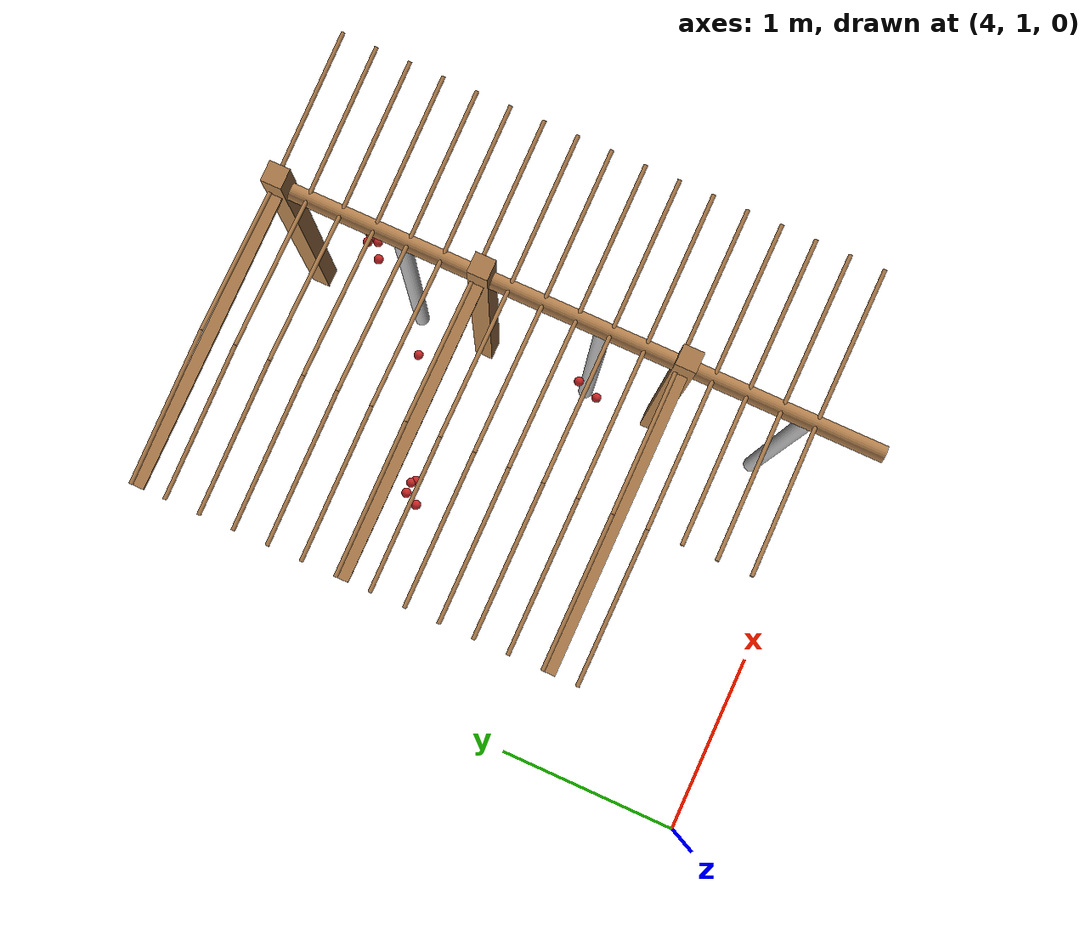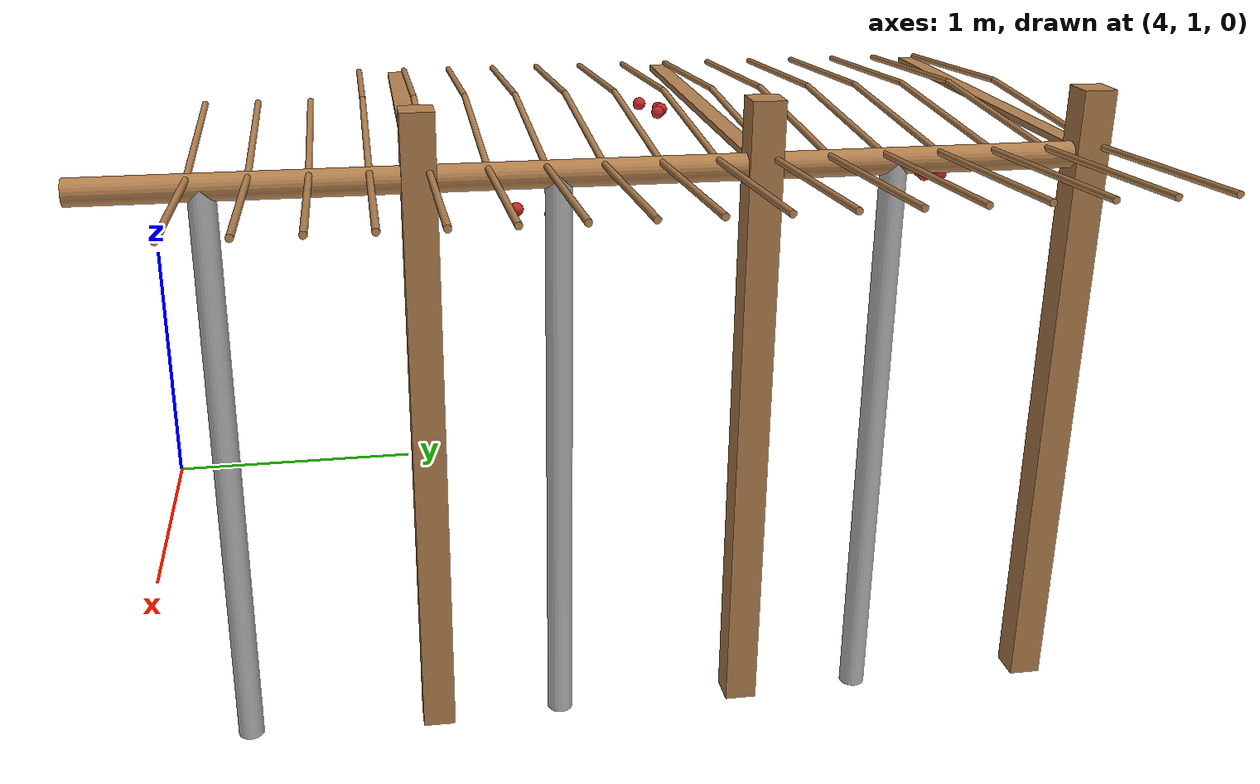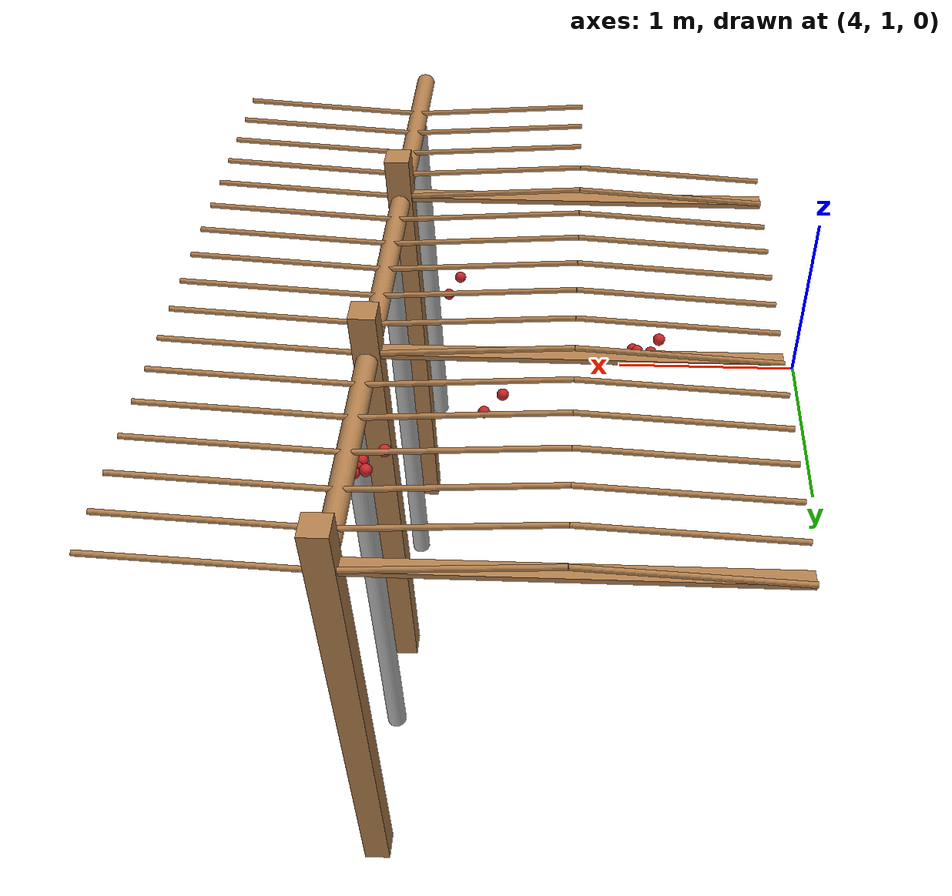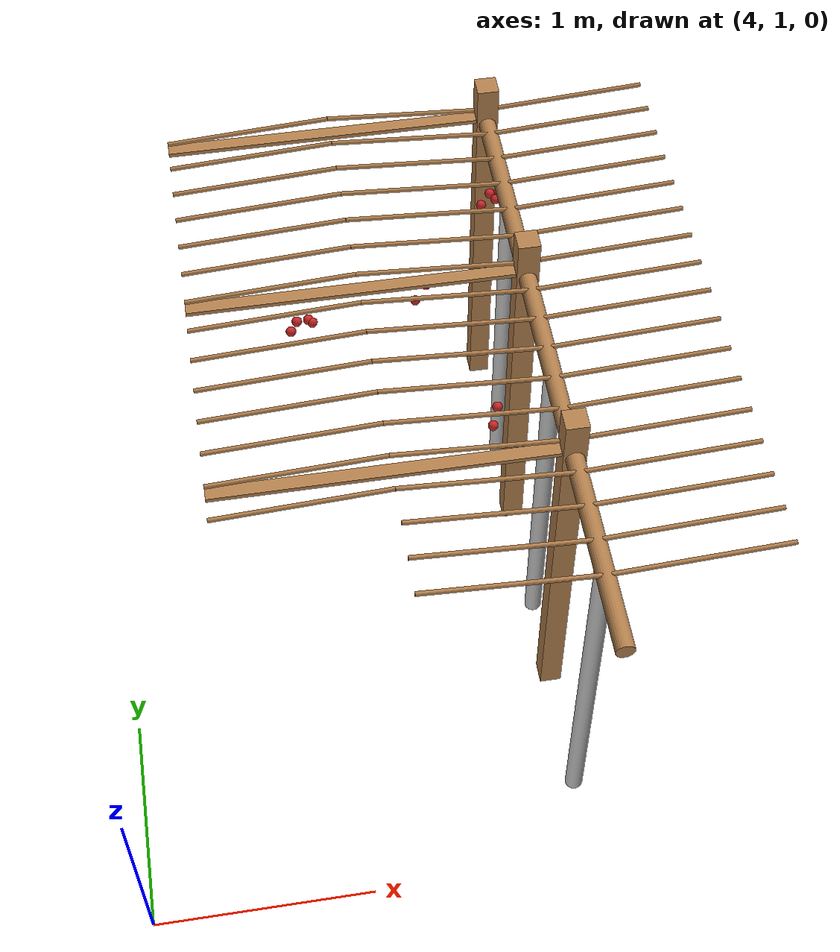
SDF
<sdf version="1.4">
 <model name="pergola">
  <include><name>post_46</name><pose>6.0 2.0 0 0 0 0</pose><uri>model://post</uri></include>
  <include><name>post_47</name><pose>6.0 3.0 0 0 0 0</pose><uri>model://post</uri></include>
  <include><name>post_48</name><pose>6.0 4.0 0 0 0 0</pose><uri>model://post</uri></include>
  <link name="beam_35">
   <pose>5.25 2.0 1.81 0 0 0</pose>
   <collision name="collision"><geometry><box><size>1.5 0.06 0.02</size></box></geometry></collision>
   <visual name="visual">
    <geometry><box><size>1.5 0.06 0.02</size></box></geometry>
    <material><script><name>Gazebo/Wood</name></script></material>
   </visual>
   <inertial>
    <mass>5</mass>
    <inertia>
     <ixx>0.0016666666666666668</ixx>
     <ixy>0.0</ixy>
     <ixz>0.0</ixz>
     <iyy>0.9390000000000001</iyy>
     <iyz>0.0</iyz>
     <izz>0.9376666666666665</izz>
    </inertia>
   </inertial>
  </link>
  <link name="beam_36">
   <pose>5.25 3.0 1.81 0 0 0</pose>
   <collision name="collision"><geometry><box><size>1.5 0.06 0.02</size></box></geometry></collision>
   <visual name="visual">
    <geometry><box><size>1.5 0.06 0.02</size></box></geometry>
    <material><script><name>Gazebo/Wood</name></script></material>
   </visual>
   <inertial>
    <mass>5</mass>
    <inertia>
     <ixx>0.0016666666666666668</ixx>
     <ixy>0.0</ixy>
     <ixz>0.0</ixz>
     <iyy>0.9390000000000001</iyy>
     <iyz>0.0</iyz>
     <izz>0.9376666666666665</izz>
    </inertia>
   </inertial>
  </link>
  <link name="beam_37">
   <pose>5.25 4.0 1.81 0 0 0</pose>
   <collision name="collision"><geometry><box><size>1.5 0.06 0.02</size></box></geometry></collision>
   <visual name="visual">
    <geometry><box><size>1.5 0.06 0.02</size></box></geometry>
    <material><script><name>Gazebo/Wood</name></script></material>
   </visual>
   <inertial>
    <mass>5</mass>
    <inertia>
     <ixx>0.0016666666666666668</ixx>
     <ixy>0.0</ixy>
     <ixz>0.0</ixz>
     <iyy>0.9390000000000001</iyy>
     <iyz>0.0</iyz>
     <izz>0.9376666666666665</izz>
    </inertia>
   </inertial>
  </link>
  <include><name>tree_41</name><pose>6.0 1.4 0 0 0 0</pose><uri>model://tree_trunk</uri></include>
  <include><name>tree_42</name><pose>6.0 2.4 0 0 0 0</pose><uri>model://tree_trunk</uri></include>
  <include><name>tree_43</name><pose>6.0 3.4 0 0 0 0</pose><uri>model://tree_trunk</uri></include>
  <link name="baseBranch_41">
   <pose>6.0 1.5 1.8 1.5707963267948966 0 0</pose>
   <collision name="collision">
    <geometry><cylinder><radius>0.04</radius><length>0.94</length></cylinder></geometry>
   </collision>
   <visual name="visual">
    <geometry><cylinder><radius>0.04</radius><length>0.94</length></cylinder></geometry>
    <material><script><name>Gazebo/WoodFloor</name></script></material>
   </visual>
   <inertial>
    <mass>10</mass>
    <inertia>
     <ixx>0.7403333333333334</ixx>
     <ixy>0.0</ixy>
     <ixz>0.0</ixz>
     <iyy>0.7403333333333334</iyy>
     <iyz>0.0</iyz>
     <izz>0.008</izz>
    </inertia>
   </inertial>
  </link>
  <link name="baseBranch_42">
   <pose>6.0 2.5 1.8 1.5707963267948966 0 0</pose>
   <collision name="collision">
    <geometry><cylinder><radius>0.04</radius><length>0.94</length></cylinder></geometry>
   </collision>
   <visual name="visual">
    <geometry><cylinder><radius>0.04</radius><length>0.94</length></cylinder></geometry>
    <material><script><name>Gazebo/WoodFloor</name></script></material>
   </visual>
   <inertial>
    <mass>10</mass>
    <inertia>
     <ixx>0.7403333333333334</ixx>
     <ixy>0.0</ixy>
     <ixz>0.0</ixz>
     <iyy>0.7403333333333334</iyy>
     <iyz>0.0</iyz>
     <izz>0.008</izz>
    </inertia>
   </inertial>
  </link>
  <link name="baseBranch_43">
   <pose>6.0 3.5 1.8 1.5707963267948966 0 0</pose>
   <collision name="collision">
    <geometry><cylinder><radius>0.04</radius><length>0.94</length></cylinder></geometry>
   </collision>
   <visual name="visual">
    <geometry><cylinder><radius>0.04</radius><length>0.94</length></cylinder></geometry>
    <material><script><name>Gazebo/WoodFloor</name></script></material>
   </visual>
   <inertial>
    <mass>10</mass>
    <inertia>
     <ixx>0.7403333333333334</ixx>
     <ixy>0.0</ixy>
     <ixz>0.0</ixz>
     <iyy>0.7403333333333334</iyy>
     <iyz>0.0</iyz>
     <izz>0.008</izz>
    </inertia>
   </inertial>
  </link>
  <link name="vine_377">
   <pose>5.625 1.3633333333333333 1.85 0 -1.5042281630190728 0</pose>
   <collision name="collision">
    <geometry><cylinder><radius>0.01</radius><length>0.7516648189186453</length></cylinder></geometry>
   </collision>
   <visual name="visual">
    <geometry><cylinder><radius>0.01</radius><length>0.7516648189186453</length></cylinder></geometry>
    <material><script><name>Gazebo/WoodFloor</name></script></material>
   </visual>
   <inertial>
    <mass>5</mass>
    <inertia>
     <ixx>0.23554166666666657</ixx>
     <ixy>0.0</ixy>
     <ixz>0.0</ixz>
     <iyy>0.23554166666666657</iyy>
     <iyz>0.0</iyz>
     <izz>0.00025</izz>
    </inertia>
   </inertial>
  </link>
  <link name="vine_379">
   <pose>5.625 1.53 1.85 0 -1.5042281630190728 0</pose>
   <collision name="collision">
    <geometry><cylinder><radius>0.01</radius><length>0.7516648189186453</length></cylinder></geometry>
   </collision>
   <visual name="visual">
    <geometry><cylinder><radius>0.01</radius><length>0.7516648189186453</length></cylinder></geometry>
    <material><script><name>Gazebo/WoodFloor</name></script></material>
   </visual>
   <inertial>
    <mass>5</mass>
    <inertia>
     <ixx>0.23554166666666657</ixx>
     <ixy>0.0</ixy>
     <ixz>0.0</ixz>
     <iyy>0.23554166666666657</iyy>
     <iyz>0.0</iyz>
     <izz>0.00025</izz>
    </inertia>
   </inertial>
  </link>
  <link name="vine_381">
   <pose>5.625 1.6966666666666665 1.85 0 -1.5042281630190728 0</pose>
   <collision name="collision">
    <geometry><cylinder><radius>0.01</radius><length>0.7516648189186453</length></cylinder></geometry>
   </collision>
   <visual name="visual">
    <geometry><cylinder><radius>0.01</radius><length>0.7516648189186453</length></cylinder></geometry>
    <material><script><name>Gazebo/WoodFloor</name></script></material>
   </visual>
   <inertial>
    <mass>5</mass>
    <inertia>
     <ixx>0.23554166666666657</ixx>
     <ixy>0.0</ixy>
     <ixz>0.0</ixz>
     <iyy>0.23554166666666657</iyy>
     <iyz>0.0</iyz>
     <izz>0.00025</izz>
    </inertia>
   </inertial>
  </link>
  <link name="vine_382">
   <pose>4.875 1.8633333333333333 1.85 0 1.5042281630190728 0</pose>
   <collision name="collision">
    <geometry><cylinder><radius>0.01</radius><length>0.7516648189186453</length></cylinder></geometry>
   </collision>
   <visual name="visual">
    <geometry><cylinder><radius>0.01</radius><length>0.7516648189186453</length></cylinder></geometry>
    <material><script><name>Gazebo/WoodFloor</name></script></material>
   </visual>
   <inertial>
    <mass>5</mass>
    <inertia>
     <ixx>0.23554166666666657</ixx>
     <ixy>0.0</ixy>
     <ixz>0.0</ixz>
     <iyy>0.23554166666666657</iyy>
     <iyz>0.0</iyz>
     <izz>0.00025</izz>
    </inertia>
   </inertial>
  </link>
  <link name="vine_383">
   <pose>5.625 1.8633333333333333 1.85 0 -1.5042281630190728 0</pose>
   <collision name="collision">
    <geometry><cylinder><radius>0.01</radius><length>0.7516648189186453</length></cylinder></geometry>
   </collision>
   <visual name="visual">
    <geometry><cylinder><radius>0.01</radius><length>0.7516648189186453</length></cylinder></geometry>
    <material><script><name>Gazebo/WoodFloor</name></script></material>
   </visual>
   <inertial>
    <mass>5</mass>
    <inertia>
     <ixx>0.23554166666666657</ixx>
     <ixy>0.0</ixy>
     <ixz>0.0</ixz>
     <iyy>0.23554166666666657</iyy>
     <iyz>0.0</iyz>
     <izz>0.00025</izz>
    </inertia>
   </inertial>
  </link>
  <link name="vine_384">
   <pose>4.875 2.03 1.85 0 1.5042281630190728 0</pose>
   <collision name="collision">
    <geometry><cylinder><radius>0.01</radius><length>0.7516648189186453</length></cylinder></geometry>
   </collision>
   <visual name="visual">
    <geometry><cylinder><radius>0.01</radius><length>0.7516648189186453</length></cylinder></geometry>
    <material><script><name>Gazebo/WoodFloor</name></script></material>
   </visual>
   <inertial>
    <mass>5</mass>
    <inertia>
     <ixx>0.23554166666666657</ixx>
     <ixy>0.0</ixy>
     <ixz>0.0</ixz>
     <iyy>0.23554166666666657</iyy>
     <iyz>0.0</iyz>
     <izz>0.00025</izz>
    </inertia>
   </inertial>
  </link>
  <link name="vine_385">
   <pose>5.625 2.03 1.85 0 -1.5042281630190728 0</pose>
   <collision name="collision">
    <geometry><cylinder><radius>0.01</radius><length>0.7516648189186453</length></cylinder></geometry>
   </collision>
   <visual name="visual">
    <geometry><cylinder><radius>0.01</radius><length>0.7516648189186453</length></cylinder></geometry>
    <material><script><name>Gazebo/WoodFloor</name></script></material>
   </visual>
   <inertial>
    <mass>5</mass>
    <inertia>
     <ixx>0.23554166666666657</ixx>
     <ixy>0.0</ixy>
     <ixz>0.0</ixz>
     <iyy>0.23554166666666657</iyy>
     <iyz>0.0</iyz>
     <izz>0.00025</izz>
    </inertia>
   </inertial>
  </link>
  <link name="vine_386">
   <pose>4.875 2.1966666666666663 1.85 0 1.5042281630190728 0</pose>
   <collision name="collision">
    <geometry><cylinder><radius>0.01</radius><length>0.7516648189186453</length></cylinder></geometry>
   </collision>
   <visual name="visual">
    <geometry><cylinder><radius>0.01</radius><length>0.7516648189186453</length></cylinder></geometry>
    <material><script><name>Gazebo/WoodFloor</name></script></material>
   </visual>
   <inertial>
    <mass>5</mass>
    <inertia>
     <ixx>0.23554166666666657</ixx>
     <ixy>0.0</ixy>
     <ixz>0.0</ixz>
     <iyy>0.23554166666666657</iyy>
     <iyz>0.0</iyz>
     <izz>0.00025</izz>
    </inertia>
   </inertial>
  </link>
  <link name="vine_387">
   <pose>5.625 2.1966666666666663 1.85 0 -1.5042281630190728 0</pose>
   <collision name="collision">
    <geometry><cylinder><radius>0.01</radius><length>0.7516648189186453</length></cylinder></geometry>
   </collision>
   <visual name="visual">
    <geometry><cylinder><radius>0.01</radius><length>0.7516648189186453</length></cylinder></geometry>
    <material><script><name>Gazebo/WoodFloor</name></script></material>
   </visual>
   <inertial>
    <mass>5</mass>
    <inertia>
     <ixx>0.23554166666666657</ixx>
     <ixy>0.0</ixy>
     <ixz>0.0</ixz>
     <iyy>0.23554166666666657</iyy>
     <iyz>0.0</iyz>
     <izz>0.00025</izz>
    </inertia>
   </inertial>
  </link>
  <link name="vine_388">
   <pose>4.875 2.363333333333333 1.85 0 1.5042281630190728 0</pose>
   <collision name="collision">
    <geometry><cylinder><radius>0.01</radius><length>0.7516648189186453</length></cylinder></geometry>
   </collision>
   <visual name="visual">
    <geometry><cylinder><radius>0.01</radius><length>0.7516648189186453</length></cylinder></geometry>
    <material><script><name>Gazebo/WoodFloor</name></script></material>
   </visual>
   <inertial>
    <mass>5</mass>
    <inertia>
     <ixx>0.23554166666666657</ixx>
     <ixy>0.0</ixy>
     <ixz>0.0</ixz>
     <iyy>0.23554166666666657</iyy>
     <iyz>0.0</iyz>
     <izz>0.00025</izz>
    </inertia>
   </inertial>
  </link>
  <link name="vine_389">
   <pose>5.625 2.363333333333333 1.85 0 -1.5042281630190728 0</pose>
   <collision name="collision">
    <geometry><cylinder><radius>0.01</radius><length>0.7516648189186453</length></cylinder></geometry>
   </collision>
   <visual name="visual">
    <geometry><cylinder><radius>0.01</radius><length>0.7516648189186453</length></cylinder></geometry>
    <material><script><name>Gazebo/WoodFloor</name></script></material>
   </visual>
   <inertial>
    <mass>5</mass>
    <inertia>
     <ixx>0.23554166666666657</ixx>
     <ixy>0.0</ixy>
     <ixz>0.0</ixz>
     <iyy>0.23554166666666657</iyy>
     <iyz>0.0</iyz>
     <izz>0.00025</izz>
    </inertia>
   </inertial>
  </link>
  <link name="vine_390">
   <pose>4.875 2.53 1.85 0 1.5042281630190728 0</pose>
   <collision name="collision">
    <geometry><cylinder><radius>0.01</radius><length>0.7516648189186453</length></cylinder></geometry>
   </collision>
   <visual name="visual">
    <geometry><cylinder><radius>0.01</radius><length>0.7516648189186453</length></cylinder></geometry>
    <material><script><name>Gazebo/WoodFloor</name></script></material>
   </visual>
   <inertial>
    <mass>5</mass>
    <inertia>
     <ixx>0.23554166666666657</ixx>
     <ixy>0.0</ixy>
     <ixz>0.0</ixz>
     <iyy>0.23554166666666657</iyy>
     <iyz>0.0</iyz>
     <izz>0.00025</izz>
    </inertia>
   </inertial>
  </link>
  <link name="vine_391">
   <pose>5.625 2.53 1.85 0 -1.5042281630190728 0</pose>
   <collision name="collision">
    <geometry><cylinder><radius>0.01</radius><length>0.7516648189186453</length></cylinder></geometry>
   </collision>
   <visual name="visual">
    <geometry><cylinder><radius>0.01</radius><length>0.7516648189186453</length></cylinder></geometry>
    <material><script><name>Gazebo/WoodFloor</name></script></material>
   </visual>
   <inertial>
    <mass>5</mass>
    <inertia>
     <ixx>0.23554166666666657</ixx>
     <ixy>0.0</ixy>
     <ixz>0.0</ixz>
     <iyy>0.23554166666666657</iyy>
     <iyz>0.0</iyz>
     <izz>0.00025</izz>
    </inertia>
   </inertial>
  </link>
  <link name="vine_392">
   <pose>4.875 2.6966666666666663 1.85 0 1.5042281630190728 0</pose>
   <collision name="collision">
    <geometry><cylinder><radius>0.01</radius><length>0.7516648189186453</length></cylinder></geometry>
   </collision>
   <visual name="visual">
    <geometry><cylinder><radius>0.01</radius><length>0.7516648189186453</length></cylinder></geometry>
    <material><script><name>Gazebo/WoodFloor</name></script></material>
   </visual>
   <inertial>
    <mass>5</mass>
    <inertia>
     <ixx>0.23554166666666657</ixx>
     <ixy>0.0</ixy>
     <ixz>0.0</ixz>
     <iyy>0.23554166666666657</iyy>
     <iyz>0.0</iyz>
     <izz>0.00025</izz>
    </inertia>
   </inertial>
  </link>
  <link name="vine_393">
   <pose>5.625 2.6966666666666663 1.85 0 -1.5042281630190728 0</pose>
   <collision name="collision">
    <geometry><cylinder><radius>0.01</radius><length>0.7516648189186453</length></cylinder></geometry>
   </collision>
   <visual name="visual">
    <geometry><cylinder><radius>0.01</radius><length>0.7516648189186453</length></cylinder></geometry>
    <material><script><name>Gazebo/WoodFloor</name></script></material>
   </visual>
   <inertial>
    <mass>5</mass>
    <inertia>
     <ixx>0.23554166666666657</ixx>
     <ixy>0.0</ixy>
     <ixz>0.0</ixz>
     <iyy>0.23554166666666657</iyy>
     <iyz>0.0</iyz>
     <izz>0.00025</izz>
    </inertia>
   </inertial>
  </link>
  <link name="vine_394">
   <pose>4.875 2.863333333333333 1.85 0 1.5042281630190728 0</pose>
   <collision name="collision">
    <geometry><cylinder><radius>0.01</radius><length>0.7516648189186453</length></cylinder></geometry>
   </collision>
   <visual name="visual">
    <geometry><cylinder><radius>0.01</radius><length>0.7516648189186453</length></cylinder></geometry>
    <material><script><name>Gazebo/WoodFloor</name></script></material>
   </visual>
   <inertial>
    <mass>5</mass>
    <inertia>
     <ixx>0.23554166666666657</ixx>
     <ixy>0.0</ixy>
     <ixz>0.0</ixz>
     <iyy>0.23554166666666657</iyy>
     <iyz>0.0</iyz>
     <izz>0.00025</izz>
    </inertia>
   </inertial>
  </link>
  <link name="vine_395">
   <pose>5.625 2.863333333333333 1.85 0 -1.5042281630190728 0</pose>
   <collision name="collision">
    <geometry><cylinder><radius>0.01</radius><length>0.7516648189186453</length></cylinder></geometry>
   </collision>
   <visual name="visual">
    <geometry><cylinder><radius>0.01</radius><length>0.7516648189186453</length></cylinder></geometry>
    <material><script><name>Gazebo/WoodFloor</name></script></material>
   </visual>
   <inertial>
    <mass>5</mass>
    <inertia>
     <ixx>0.23554166666666657</ixx>
     <ixy>0.0</ixy>
     <ixz>0.0</ixz>
     <iyy>0.23554166666666657</iyy>
     <iyz>0.0</iyz>
     <izz>0.00025</izz>
    </inertia>
   </inertial>
  </link>
  <link name="vine_396">
   <pose>4.875 3.03 1.85 0 1.5042281630190728 0</pose>
   <collision name="collision">
    <geometry><cylinder><radius>0.01</radius><length>0.7516648189186453</length></cylinder></geometry>
   </collision>
   <visual name="visual">
    <geometry><cylinder><radius>0.01</radius><length>0.7516648189186453</length></cylinder></geometry>
    <material><script><name>Gazebo/WoodFloor</name></script></material>
   </visual>
   <inertial>
    <mass>5</mass>
    <inertia>
     <ixx>0.23554166666666657</ixx>
     <ixy>0.0</ixy>
     <ixz>0.0</ixz>
     <iyy>0.23554166666666657</iyy>
     <iyz>0.0</iyz>
     <izz>0.00025</izz>
    </inertia>
   </inertial>
  </link>
  <link name="vine_397">
   <pose>5.625 3.03 1.85 0 -1.5042281630190728 0</pose>
   <collision name="collision">
    <geometry><cylinder><radius>0.01</radius><length>0.7516648189186453</length></cylinder></geometry>
   </collision>
   <visual name="visual">
    <geometry><cylinder><radius>0.01</radius><length>0.7516648189186453</length></cylinder></geometry>
    <material><script><name>Gazebo/WoodFloor</name></script></material>
   </visual>
   <inertial>
    <mass>5</mass>
    <inertia>
     <ixx>0.23554166666666657</ixx>
     <ixy>0.0</ixy>
     <ixz>0.0</ixz>
     <iyy>0.23554166666666657</iyy>
     <iyz>0.0</iyz>
     <izz>0.00025</izz>
    </inertia>
   </inertial>
  </link>
  <link name="vine_398">
   <pose>4.875 3.1966666666666663 1.85 0 1.5042281630190728 0</pose>
   <collision name="collision">
    <geometry><cylinder><radius>0.01</radius><length>0.7516648189186453</length></cylinder></geometry>
   </collision>
   <visual name="visual">
    <geometry><cylinder><radius>0.01</radius><length>0.7516648189186453</length></cylinder></geometry>
    <material><script><name>Gazebo/WoodFloor</name></script></material>
   </visual>
   <inertial>
    <mass>5</mass>
    <inertia>
     <ixx>0.23554166666666657</ixx>
     <ixy>0.0</ixy>
     <ixz>0.0</ixz>
     <iyy>0.23554166666666657</iyy>
     <iyz>0.0</iyz>
     <izz>0.00025</izz>
    </inertia>
   </inertial>
  </link>
  <link name="vine_399">
   <pose>5.625 3.1966666666666663 1.85 0 -1.5042281630190728 0</pose>
   <collision name="collision">
    <geometry><cylinder><radius>0.01</radius><length>0.7516648189186453</length></cylinder></geometry>
   </collision>
   <visual name="visual">
    <geometry><cylinder><radius>0.01</radius><length>0.7516648189186453</length></cylinder></geometry>
    <material><script><name>Gazebo/WoodFloor</name></script></material>
   </visual>
   <inertial>
    <mass>5</mass>
    <inertia>
     <ixx>0.23554166666666657</ixx>
     <ixy>0.0</ixy>
     <ixz>0.0</ixz>
     <iyy>0.23554166666666657</iyy>
     <iyz>0.0</iyz>
     <izz>0.00025</izz>
    </inertia>
   </inertial>
  </link>
  <link name="vine_400">
   <pose>4.875 3.363333333333333 1.85 0 1.5042281630190728 0</pose>
   <collision name="collision">
    <geometry><cylinder><radius>0.01</radius><length>0.7516648189186453</length></cylinder></geometry>
   </collision>
   <visual name="visual">
    <geometry><cylinder><radius>0.01</radius><length>0.7516648189186453</length></cylinder></geometry>
    <material><script><name>Gazebo/WoodFloor</name></script></material>
   </visual>
   <inertial>
    <mass>5</mass>
    <inertia>
     <ixx>0.23554166666666657</ixx>
     <ixy>0.0</ixy>
     <ixz>0.0</ixz>
     <iyy>0.23554166666666657</iyy>
     <iyz>0.0</iyz>
     <izz>0.00025</izz>
    </inertia>
   </inertial>
  </link>
  <link name="vine_401">
   <pose>5.625 3.363333333333333 1.85 0 -1.5042281630190728 0</pose>
   <collision name="collision">
    <geometry><cylinder><radius>0.01</radius><length>0.7516648189186453</length></cylinder></geometry>
   </collision>
   <visual name="visual">
    <geometry><cylinder><radius>0.01</radius><length>0.7516648189186453</length></cylinder></geometry>
    <material><script><name>Gazebo/WoodFloor</name></script></material>
   </visual>
   <inertial>
    <mass>5</mass>
    <inertia>
     <ixx>0.23554166666666657</ixx>
     <ixy>0.0</ixy>
     <ixz>0.0</ixz>
     <iyy>0.23554166666666657</iyy>
     <iyz>0.0</iyz>
     <izz>0.00025</izz>
    </inertia>
   </inertial>
  </link>
  <link name="vine_402">
   <pose>4.875 3.53 1.85 0 1.5042281630190728 0</pose>
   <collision name="collision">
    <geometry><cylinder><radius>0.01</radius><length>0.7516648189186453</length></cylinder></geometry>
   </collision>
   <visual name="visual">
    <geometry><cylinder><radius>0.01</radius><length>0.7516648189186453</length></cylinder></geometry>
    <material><script><name>Gazebo/WoodFloor</name></script></material>
   </visual>
   <inertial>
    <mass>5</mass>
    <inertia>
     <ixx>0.23554166666666657</ixx>
     <ixy>0.0</ixy>
     <ixz>0.0</ixz>
     <iyy>0.23554166666666657</iyy>
     <iyz>0.0</iyz>
     <izz>0.00025</izz>
    </inertia>
   </inertial>
  </link>
  <link name="vine_403">
   <pose>5.625 3.53 1.85 0 -1.5042281630190728 0</pose>
   <collision name="collision">
    <geometry><cylinder><radius>0.01</radius><length>0.7516648189186453</length></cylinder></geometry>
   </collision>
   <visual name="visual">
    <geometry><cylinder><radius>0.01</radius><length>0.7516648189186453</length></cylinder></geometry>
    <material><script><name>Gazebo/WoodFloor</name></script></material>
   </visual>
   <inertial>
    <mass>5</mass>
    <inertia>
     <ixx>0.23554166666666657</ixx>
     <ixy>0.0</ixy>
     <ixz>0.0</ixz>
     <iyy>0.23554166666666657</iyy>
     <iyz>0.0</iyz>
     <izz>0.00025</izz>
    </inertia>
   </inertial>
  </link>
  <link name="vine_404">
   <pose>4.875 3.6966666666666663 1.85 0 1.5042281630190728 0</pose>
   <collision name="collision">
    <geometry><cylinder><radius>0.01</radius><length>0.7516648189186453</length></cylinder></geometry>
   </collision>
   <visual name="visual">
    <geometry><cylinder><radius>0.01</radius><length>0.7516648189186453</length></cylinder></geometry>
    <material><script><name>Gazebo/WoodFloor</name></script></material>
   </visual>
   <inertial>
    <mass>5</mass>
    <inertia>
     <ixx>0.23554166666666657</ixx>
     <ixy>0.0</ixy>
     <ixz>0.0</ixz>
     <iyy>0.23554166666666657</iyy>
     <iyz>0.0</iyz>
     <izz>0.00025</izz>
    </inertia>
   </inertial>
  </link>
  <link name="vine_405">
   <pose>5.625 3.6966666666666663 1.85 0 -1.5042281630190728 0</pose>
   <collision name="collision">
    <geometry><cylinder><radius>0.01</radius><length>0.7516648189186453</length></cylinder></geometry>
   </collision>
   <visual name="visual">
    <geometry><cylinder><radius>0.01</radius><length>0.7516648189186453</length></cylinder></geometry>
    <material><script><name>Gazebo/WoodFloor</name></script></material>
   </visual>
   <inertial>
    <mass>5</mass>
    <inertia>
     <ixx>0.23554166666666657</ixx>
     <ixy>0.0</ixy>
     <ixz>0.0</ixz>
     <iyy>0.23554166666666657</iyy>
     <iyz>0.0</iyz>
     <izz>0.00025</izz>
    </inertia>
   </inertial>
  </link>
  <link name="vine_406">
   <pose>4.875 3.863333333333333 1.85 0 1.5042281630190728 0</pose>
   <collision name="collision">
    <geometry><cylinder><radius>0.01</radius><length>0.7516648189186453</length></cylinder></geometry>
   </collision>
   <visual name="visual">
    <geometry><cylinder><radius>0.01</radius><length>0.7516648189186453</length></cylinder></geometry>
    <material><script><name>Gazebo/WoodFloor</name></script></material>
   </visual>
   <inertial>
    <mass>5</mass>
    <inertia>
     <ixx>0.23554166666666657</ixx>
     <ixy>0.0</ixy>
     <ixz>0.0</ixz>
     <iyy>0.23554166666666657</iyy>
     <iyz>0.0</iyz>
     <izz>0.00025</izz>
    </inertia>
   </inertial>
  </link>
  <link name="vine_407">
   <pose>5.625 3.863333333333333 1.85 0 -1.5042281630190728 0</pose>
   <collision name="collision">
    <geometry><cylinder><radius>0.01</radius><length>0.7516648189186453</length></cylinder></geometry>
   </collision>
   <visual name="visual">
    <geometry><cylinder><radius>0.01</radius><length>0.7516648189186453</length></cylinder></geometry>
    <material><script><name>Gazebo/WoodFloor</name></script></material>
   </visual>
   <inertial>
    <mass>5</mass>
    <inertia>
     <ixx>0.23554166666666657</ixx>
     <ixy>0.0</ixy>
     <ixz>0.0</ixz>
     <iyy>0.23554166666666657</iyy>
     <iyz>0.0</iyz>
     <izz>0.00025</izz>
    </inertia>
   </inertial>
  </link>
  <link name="vine_408">
   <pose>4.875 4.03 1.85 0 1.5042281630190728 0</pose>
   <collision name="collision">
    <geometry><cylinder><radius>0.01</radius><length>0.7516648189186453</length></cylinder></geometry>
   </collision>
   <visual name="visual">
    <geometry><cylinder><radius>0.01</radius><length>0.7516648189186453</length></cylinder></geometry>
    <material><script><name>Gazebo/WoodFloor</name></script></material>
   </visual>
   <inertial>
    <mass>5</mass>
    <inertia>
     <ixx>0.23554166666666657</ixx>
     <ixy>0.0</ixy>
     <ixz>0.0</ixz>
     <iyy>0.23554166666666657</iyy>
     <iyz>0.0</iyz>
     <izz>0.00025</izz>
    </inertia>
   </inertial>
  </link>
  <link name="vine_409">
   <pose>5.625 4.03 1.85 0 -1.5042281630190728 0</pose>
   <collision name="collision">
    <geometry><cylinder><radius>0.01</radius><length>0.7516648189186453</length></cylinder></geometry>
   </collision>
   <visual name="visual">
    <geometry><cylinder><radius>0.01</radius><length>0.7516648189186453</length></cylinder></geometry>
    <material><script><name>Gazebo/WoodFloor</name></script></material>
   </visual>
   <inertial>
    <mass>5</mass>
    <inertia>
     <ixx>0.23554166666666657</ixx>
     <ixy>0.0</ixy>
     <ixz>0.0</ixz>
     <iyy>0.23554166666666657</iyy>
     <iyz>0.0</iyz>
     <izz>0.00025</izz>
    </inertia>
   </inertial>
  </link>
  <link name="vine_496">
   <pose>6.375 1.3633333333333333 1.85 0 1.5042281630190728 0</pose>
   <collision name="collision">
    <geometry><cylinder><radius>0.01</radius><length>0.7516648189186453</length></cylinder></geometry>
   </collision>
   <visual name="visual">
    <geometry><cylinder><radius>0.01</radius><length>0.7516648189186453</length></cylinder></geometry>
    <material><script><name>Gazebo/WoodFloor</name></script></material>
   </visual>
   <inertial>
    <mass>5</mass>
    <inertia>
     <ixx>0.23554166666666657</ixx>
     <ixy>0.0</ixy>
     <ixz>0.0</ixz>
     <iyy>0.23554166666666657</iyy>
     <iyz>0.0</iyz>
     <izz>0.00025</izz>
    </inertia>
   </inertial>
  </link>
  <link name="vine_498">
   <pose>6.375 1.53 1.85 0 1.5042281630190728 0</pose>
   <collision name="collision">
    <geometry><cylinder><radius>0.01</radius><length>0.7516648189186453</length></cylinder></geometry>
   </collision>
   <visual name="visual">
    <geometry><cylinder><radius>0.01</radius><length>0.7516648189186453</length></cylinder></geometry>
    <material><script><name>Gazebo/WoodFloor</name></script></material>
   </visual>
   <inertial>
    <mass>5</mass>
    <inertia>
     <ixx>0.23554166666666657</ixx>
     <ixy>0.0</ixy>
     <ixz>0.0</ixz>
     <iyy>0.23554166666666657</iyy>
     <iyz>0.0</iyz>
     <izz>0.00025</izz>
    </inertia>
   </inertial>
  </link>
  <link name="vine_500">
   <pose>6.375 1.6966666666666665 1.85 0 1.5042281630190728 0</pose>
   <collision name="collision">
    <geometry><cylinder><radius>0.01</radius><length>0.7516648189186453</length></cylinder></geometry>
   </collision>
   <visual name="visual">
    <geometry><cylinder><radius>0.01</radius><length>0.7516648189186453</length></cylinder></geometry>
    <material><script><name>Gazebo/WoodFloor</name></script></material>
   </visual>
   <inertial>
    <mass>5</mass>
    <inertia>
     <ixx>0.23554166666666657</ixx>
     <ixy>0.0</ixy>
     <ixz>0.0</ixz>
     <iyy>0.23554166666666657</iyy>
     <iyz>0.0</iyz>
     <izz>0.00025</izz>
    </inertia>
   </inertial>
  </link>
  <link name="vine_502">
   <pose>6.375 1.8633333333333333 1.85 0 1.5042281630190728 0</pose>
   <collision name="collision">
    <geometry><cylinder><radius>0.01</radius><length>0.7516648189186453</length></cylinder></geometry>
   </collision>
   <visual name="visual">
    <geometry><cylinder><radius>0.01</radius><length>0.7516648189186453</length></cylinder></geometry>
    <material><script><name>Gazebo/WoodFloor</name></script></material>
   </visual>
   <inertial>
    <mass>5</mass>
    <inertia>
     <ixx>0.23554166666666657</ixx>
     <ixy>0.0</ixy>
     <ixz>0.0</ixz>
     <iyy>0.23554166666666657</iyy>
     <iyz>0.0</iyz>
     <izz>0.00025</izz>
    </inertia>
   </inertial>
  </link>
  <link name="vine_504">
   <pose>6.375 2.03 1.85 0 1.5042281630190728 0</pose>
   <collision name="collision">
    <geometry><cylinder><radius>0.01</radius><length>0.7516648189186453</length></cylinder></geometry>
   </collision>
   <visual name="visual">
    <geometry><cylinder><radius>0.01</radius><length>0.7516648189186453</length></cylinder></geometry>
    <material><script><name>Gazebo/WoodFloor</name></script></material>
   </visual>
   <inertial>
    <mass>5</mass>
    <inertia>
     <ixx>0.23554166666666657</ixx>
     <ixy>0.0</ixy>
     <ixz>0.0</ixz>
     <iyy>0.23554166666666657</iyy>
     <iyz>0.0</iyz>
     <izz>0.00025</izz>
    </inertia>
   </inertial>
  </link>
  <link name="vine_506">
   <pose>6.375 2.1966666666666663 1.85 0 1.5042281630190728 0</pose>
   <collision name="collision">
    <geometry><cylinder><radius>0.01</radius><length>0.7516648189186453</length></cylinder></geometry>
   </collision>
   <visual name="visual">
    <geometry><cylinder><radius>0.01</radius><length>0.7516648189186453</length></cylinder></geometry>
    <material><script><name>Gazebo/WoodFloor</name></script></material>
   </visual>
   <inertial>
    <mass>5</mass>
    <inertia>
     <ixx>0.23554166666666657</ixx>
     <ixy>0.0</ixy>
     <ixz>0.0</ixz>
     <iyy>0.23554166666666657</iyy>
     <iyz>0.0</iyz>
     <izz>0.00025</izz>
    </inertia>
   </inertial>
  </link>
  <link name="vine_508">
   <pose>6.375 2.363333333333333 1.85 0 1.5042281630190728 0</pose>
   <collision name="collision">
    <geometry><cylinder><radius>0.01</radius><length>0.7516648189186453</length></cylinder></geometry>
   </collision>
   <visual name="visual">
    <geometry><cylinder><radius>0.01</radius><length>0.7516648189186453</length></cylinder></geometry>
    <material><script><name>Gazebo/WoodFloor</name></script></material>
   </visual>
   <inertial>
    <mass>5</mass>
    <inertia>
     <ixx>0.23554166666666657</ixx>
     <ixy>0.0</ixy>
     <ixz>0.0</ixz>
     <iyy>0.23554166666666657</iyy>
     <iyz>0.0</iyz>
     <izz>0.00025</izz>
    </inertia>
   </inertial>
  </link>
  <link name="vine_510">
   <pose>6.375 2.53 1.85 0 1.5042281630190728 0</pose>
   <collision name="collision">
    <geometry><cylinder><radius>0.01</radius><length>0.7516648189186453</length></cylinder></geometry>
   </collision>
   <visual name="visual">
    <geometry><cylinder><radius>0.01</radius><length>0.7516648189186453</length></cylinder></geometry>
    <material><script><name>Gazebo/WoodFloor</name></script></material>
   </visual>
   <inertial>
    <mass>5</mass>
    <inertia>
     <ixx>0.23554166666666657</ixx>
     <ixy>0.0</ixy>
     <ixz>0.0</ixz>
     <iyy>0.23554166666666657</iyy>
     <iyz>0.0</iyz>
     <izz>0.00025</izz>
    </inertia>
   </inertial>
  </link>
  <link name="vine_512">
   <pose>6.375 2.6966666666666663 1.85 0 1.5042281630190728 0</pose>
   <collision name="collision">
    <geometry><cylinder><radius>0.01</radius><length>0.7516648189186453</length></cylinder></geometry>
   </collision>
   <visual name="visual">
    <geometry><cylinder><radius>0.01</radius><length>0.7516648189186453</length></cylinder></geometry>
    <material><script><name>Gazebo/WoodFloor</name></script></material>
   </visual>
   <inertial>
    <mass>5</mass>
    <inertia>
     <ixx>0.23554166666666657</ixx>
     <ixy>0.0</ixy>
     <ixz>0.0</ixz>
     <iyy>0.23554166666666657</iyy>
     <iyz>0.0</iyz>
     <izz>0.00025</izz>
    </inertia>
   </inertial>
  </link>
  <link name="vine_514">
   <pose>6.375 2.863333333333333 1.85 0 1.5042281630190728 0</pose>
   <collision name="collision">
    <geometry><cylinder><radius>0.01</radius><length>0.7516648189186453</length></cylinder></geometry>
   </collision>
   <visual name="visual">
    <geometry><cylinder><radius>0.01</radius><length>0.7516648189186453</length></cylinder></geometry>
    <material><script><name>Gazebo/WoodFloor</name></script></material>
   </visual>
   <inertial>
    <mass>5</mass>
    <inertia>
     <ixx>0.23554166666666657</ixx>
     <ixy>0.0</ixy>
     <ixz>0.0</ixz>
     <iyy>0.23554166666666657</iyy>
     <iyz>0.0</iyz>
     <izz>0.00025</izz>
    </inertia>
   </inertial>
  </link>
  <link name="vine_516">
   <pose>6.375 3.03 1.85 0 1.5042281630190728 0</pose>
   <collision name="collision">
    <geometry><cylinder><radius>0.01</radius><length>0.7516648189186453</length></cylinder></geometry>
   </collision>
   <visual name="visual">
    <geometry><cylinder><radius>0.01</radius><length>0.7516648189186453</length></cylinder></geometry>
    <material><script><name>Gazebo/WoodFloor</name></script></material>
   </visual>
   <inertial>
    <mass>5</mass>
    <inertia>
     <ixx>0.23554166666666657</ixx>
     <ixy>0.0</ixy>
     <ixz>0.0</ixz>
     <iyy>0.23554166666666657</iyy>
     <iyz>0.0</iyz>
     <izz>0.00025</izz>
    </inertia>
   </inertial>
  </link>
  <link name="vine_518">
   <pose>6.375 3.1966666666666663 1.85 0 1.5042281630190728 0</pose>
   <collision name="collision">
    <geometry><cylinder><radius>0.01</radius><length>0.7516648189186453</length></cylinder></geometry>
   </collision>
   <visual name="visual">
    <geometry><cylinder><radius>0.01</radius><length>0.7516648189186453</length></cylinder></geometry>
    <material><script><name>Gazebo/WoodFloor</name></script></material>
   </visual>
   <inertial>
    <mass>5</mass>
    <inertia>
     <ixx>0.23554166666666657</ixx>
     <ixy>0.0</ixy>
     <ixz>0.0</ixz>
     <iyy>0.23554166666666657</iyy>
     <iyz>0.0</iyz>
     <izz>0.00025</izz>
    </inertia>
   </inertial>
  </link>
  <link name="vine_520">
   <pose>6.375 3.363333333333333 1.85 0 1.5042281630190728 0</pose>
   <collision name="collision">
    <geometry><cylinder><radius>0.01</radius><length>0.7516648189186453</length></cylinder></geometry>
   </collision>
   <visual name="visual">
    <geometry><cylinder><radius>0.01</radius><length>0.7516648189186453</length></cylinder></geometry>
    <material><script><name>Gazebo/WoodFloor</name></script></material>
   </visual>
   <inertial>
    <mass>5</mass>
    <inertia>
     <ixx>0.23554166666666657</ixx>
     <ixy>0.0</ixy>
     <ixz>0.0</ixz>
     <iyy>0.23554166666666657</iyy>
     <iyz>0.0</iyz>
     <izz>0.00025</izz>
    </inertia>
   </inertial>
  </link>
  <link name="vine_522">
   <pose>6.375 3.53 1.85 0 1.5042281630190728 0</pose>
   <collision name="collision">
    <geometry><cylinder><radius>0.01</radius><length>0.7516648189186453</length></cylinder></geometry>
   </collision>
   <visual name="visual">
    <geometry><cylinder><radius>0.01</radius><length>0.7516648189186453</length></cylinder></geometry>
    <material><script><name>Gazebo/WoodFloor</name></script></material>
   </visual>
   <inertial>
    <mass>5</mass>
    <inertia>
     <ixx>0.23554166666666657</ixx>
     <ixy>0.0</ixy>
     <ixz>0.0</ixz>
     <iyy>0.23554166666666657</iyy>
     <iyz>0.0</iyz>
     <izz>0.00025</izz>
    </inertia>
   </inertial>
  </link>
  <link name="vine_524">
   <pose>6.375 3.6966666666666663 1.85 0 1.5042281630190728 0</pose>
   <collision name="collision">
    <geometry><cylinder><radius>0.01</radius><length>0.7516648189186453</length></cylinder></geometry>
   </collision>
   <visual name="visual">
    <geometry><cylinder><radius>0.01</radius><length>0.7516648189186453</length></cylinder></geometry>
    <material><script><name>Gazebo/WoodFloor</name></script></material>
   </visual>
   <inertial>
    <mass>5</mass>
    <inertia>
     <ixx>0.23554166666666657</ixx>
     <ixy>0.0</ixy>
     <ixz>0.0</ixz>
     <iyy>0.23554166666666657</iyy>
     <iyz>0.0</iyz>
     <izz>0.00025</izz>
    </inertia>
   </inertial>
  </link>
  <link name="vine_526">
   <pose>6.375 3.863333333333333 1.85 0 1.5042281630190728 0</pose>
   <collision name="collision">
    <geometry><cylinder><radius>0.01</radius><length>0.7516648189186453</length></cylinder></geometry>
   </collision>
   <visual name="visual">
    <geometry><cylinder><radius>0.01</radius><length>0.7516648189186453</length></cylinder></geometry>
    <material><script><name>Gazebo/WoodFloor</name></script></material>
   </visual>
   <inertial>
    <mass>5</mass>
    <inertia>
     <ixx>0.23554166666666657</ixx>
     <ixy>0.0</ixy>
     <ixz>0.0</ixz>
     <iyy>0.23554166666666657</iyy>
     <iyz>0.0</iyz>
     <izz>0.00025</izz>
    </inertia>
   </inertial>
  </link>
  <link name="vine_528">
   <pose>6.375 4.03 1.85 0 1.5042281630190728 0</pose>
   <collision name="collision">
    <geometry><cylinder><radius>0.01</radius><length>0.7516648189186453</length></cylinder></geometry>
   </collision>
   <visual name="visual">
    <geometry><cylinder><radius>0.01</radius><length>0.7516648189186453</length></cylinder></geometry>
    <material><script><name>Gazebo/WoodFloor</name></script></material>
   </visual>
   <inertial>
    <mass>5</mass>
    <inertia>
     <ixx>0.23554166666666657</ixx>
     <ixy>0.0</ixy>
     <ixz>0.0</ixz>
     <iyy>0.23554166666666657</iyy>
     <iyz>0.0</iyz>
     <izz>0.00025</izz>
    </inertia>
   </inertial>
  </link>
  <link name="fruit_29">
   <pose>5.88360657958364 3.4627964368382527 1.7701344892005928 0 0 0</pose>
   <collision name="fruit_collision_29"><geometry><sphere><radius>0.022</radius></sphere></geometry></collision>
   <visual name="visual">
    <geometry><sphere><radius>0.022</radius></sphere></geometry>
    <material><script><name>Gazebo/Red</name></script></material>
   </visual>
   <inertial>
    <mass>0.05</mass>
    <inertia>
     <ixx>9.679999999999999e-06</ixx>
     <ixy>0.0</ixy>
     <ixz>0.0</ixz>
     <iyy>9.679999999999999e-06</iyy>
     <iyz>0.0</iyz>
     <izz>9.679999999999999e-06</izz>
    </inertia>
   </inertial>
   <sensor name="fruit_contact_29" type="contact">
    <contact><collision>fruit_collision_29</collision></contact>
   </sensor>
  </link>
  <link name="fruit_53">
   <pose>4.9389875780089305 2.843894023060938 1.765170285882578 0 0 0</pose>
   <collision name="fruit_collision_53"><geometry><sphere><radius>0.022</radius></sphere></geometry></collision>
   <visual name="visual">
    <geometry><sphere><radius>0.022</radius></sphere></geometry>
    <material><script><name>Gazebo/Red</name></script></material>
   </visual>
   <inertial>
    <mass>0.05</mass>
    <inertia>
     <ixx>9.679999999999999e-06</ixx>
     <ixy>0.0</ixy>
     <ixz>0.0</ixz>
     <iyy>9.679999999999999e-06</iyy>
     <iyz>0.0</iyz>
     <izz>9.679999999999999e-06</izz>
    </inertia>
   </inertial>
   <sensor name="fruit_contact_53" type="contact">
    <contact><collision>fruit_collision_53</collision></contact>
   </sensor>
  </link>
  <link name="fruit_89">
   <pose>5.732922857924723 2.3076748095233555 1.6218049521000908 0 0 0</pose>
   <collision name="fruit_collision_89"><geometry><sphere><radius>0.022</radius></sphere></geometry></collision>
   <visual name="visual">
    <geometry><sphere><radius>0.022</radius></sphere></geometry>
    <material><script><name>Gazebo/Red</name></script></material>
   </visual>
   <inertial>
    <mass>0.05</mass>
    <inertia>
     <ixx>9.679999999999999e-06</ixx>
     <ixy>0.0</ixy>
     <ixz>0.0</ixz>
     <iyy>9.679999999999999e-06</iyy>
     <iyz>0.0</iyz>
     <izz>9.679999999999999e-06</izz>
    </inertia>
   </inertial>
   <sensor name="fruit_contact_89" type="contact">
    <contact><collision>fruit_collision_89</collision></contact>
   </sensor>
  </link>
  <link name="fruit_107">
   <pose>5.512599299512634 3.0408086642999175 1.6492403069984476 0 0 0</pose>
   <collision name="fruit_collision_107"><geometry><sphere><radius>0.022</radius></sphere></geometry></collision>
   <visual name="visual">
    <geometry><sphere><radius>0.022</radius></sphere></geometry>
    <material><script><name>Gazebo/Red</name></script></material>
   </visual>
   <inertial>
    <mass>0.05</mass>
    <inertia>
     <ixx>9.679999999999999e-06</ixx>
     <ixy>0.0</ixy>
     <ixz>0.0</ixz>
     <iyy>9.679999999999999e-06</iyy>
     <iyz>0.0</iyz>
     <izz>9.679999999999999e-06</izz>
    </inertia>
   </inertial>
   <sensor name="fruit_contact_107" type="contact">
    <contact><collision>fruit_collision_107</collision></contact>
   </sensor>
  </link>
  <link name="fruit_183">
   <pose>5.770741530107275 2.4117837914750333 1.6139125492793618 0 0 0</pose>
   <collision name="fruit_collision_183"><geometry><sphere><radius>0.022</radius></sphere></geometry></collision>
   <visual name="visual">
    <geometry><sphere><radius>0.022</radius></sphere></geometry>
    <material><script><name>Gazebo/Red</name></script></material>
   </visual>
   <inertial>
    <mass>0.05</mass>
    <inertia>
     <ixx>9.679999999999999e-06</ixx>
     <ixy>0.0</ixy>
     <ixz>0.0</ixz>
     <iyy>9.679999999999999e-06</iyy>
     <iyz>0.0</iyz>
     <izz>9.679999999999999e-06</izz>
    </inertia>
   </inertial>
   <sensor name="fruit_contact_183" type="contact">
    <contact><collision>fruit_collision_183</collision></contact>
   </sensor>
  </link>
  <link name="fruit_223">
   <pose>5.9661639762287795 3.5120907281733715 1.7493849295173411 0 0 0</pose>
   <collision name="fruit_collision_223"><geometry><sphere><radius>0.022</radius></sphere></geometry></collision>
   <visual name="visual">
    <geometry><sphere><radius>0.022</radius></sphere></geometry>
    <material><script><name>Gazebo/Red</name></script></material>
   </visual>
   <inertial>
    <mass>0.05</mass>
    <inertia>
     <ixx>9.679999999999999e-06</ixx>
     <ixy>0.0</ixy>
     <ixz>0.0</ixz>
     <iyy>9.679999999999999e-06</iyy>
     <iyz>0.0</iyz>
     <izz>9.679999999999999e-06</izz>
    </inertia>
   </inertial>
   <sensor name="fruit_contact_223" type="contact">
    <contact><collision>fruit_collision_223</collision></contact>
   </sensor>
  </link>
  <link name="fruit_252">
   <pose>5.575764669714347 3.1305970407182344 1.643907458973246 0 0 0</pose>
   <collision name="fruit_collision_252"><geometry><sphere><radius>0.022</radius></sphere></geometry></collision>
   <visual name="visual">
    <geometry><sphere><radius>0.022</radius></sphere></geometry>
    <material><script><name>Gazebo/Red</name></script></material>
   </visual>
   <inertial>
    <mass>0.05</mass>
    <inertia>
     <ixx>9.679999999999999e-06</ixx>
     <ixy>0.0</ixy>
     <ixz>0.0</ixz>
     <iyy>9.679999999999999e-06</iyy>
     <iyz>0.0</iyz>
     <izz>9.679999999999999e-06</izz>
    </inertia>
   </inertial>
   <sensor name="fruit_contact_252" type="contact">
    <contact><collision>fruit_collision_252</collision></contact>
   </sensor>
  </link>
  <link name="fruit_279">
   <pose>5.03724708403827 2.8913095593661273 1.7540572804036831 0 0 0</pose>
   <collision name="fruit_collision_279"><geometry><sphere><radius>0.022</radius></sphere></geometry></collision>
   <visual name="visual">
    <geometry><sphere><radius>0.022</radius></sphere></geometry>
    <material><script><name>Gazebo/Red</name></script></material>
   </visual>
   <inertial>
    <mass>0.05</mass>
    <inertia>
     <ixx>9.679999999999999e-06</ixx>
     <ixy>0.0</ixy>
     <ixz>0.0</ixz>
     <iyy>9.679999999999999e-06</iyy>
     <iyz>0.0</iyz>
     <izz>9.679999999999999e-06</izz>
    </inertia>
   </inertial>
   <sensor name="fruit_contact_279" type="contact">
    <contact><collision>fruit_collision_279</collision></contact>
   </sensor>
  </link>
  <link name="fruit_281">
   <pose>5.937877239674492 3.543512665301454 1.7573473589347122 0 0 0</pose>
   <collision name="fruit_collision_281"><geometry><sphere><radius>0.022</radius></sphere></geometry></collision>
   <visual name="visual">
    <geometry><sphere><radius>0.022</radius></sphere></geometry>
    <material><script><name>Gazebo/Red</name></script></material>
   </visual>
   <inertial>
    <mass>0.05</mass>
    <inertia>
     <ixx>9.679999999999999e-06</ixx>
     <ixy>0.0</ixy>
     <ixz>0.0</ixz>
     <iyy>9.679999999999999e-06</iyy>
     <iyz>0.0</iyz>
     <izz>9.679999999999999e-06</izz>
    </inertia>
   </inertial>
   <sensor name="fruit_contact_281" type="contact">
    <contact><collision>fruit_collision_281</collision></contact>
   </sensor>
  </link>
  <link name="fruit_333">
   <pose>5.980018623975232 3.5511852081173716 1.7495400611840268 0 0 0</pose>
   <collision name="fruit_collision_333"><geometry><sphere><radius>0.022</radius></sphere></geometry></collision>
   <visual name="visual">
    <geometry><sphere><radius>0.022</radius></sphere></geometry>
    <material><script><name>Gazebo/Red</name></script></material>
   </visual>
   <inertial>
    <mass>0.05</mass>
    <inertia>
     <ixx>9.679999999999999e-06</ixx>
     <ixy>0.0</ixy>
     <ixz>0.0</ixz>
     <iyy>9.679999999999999e-06</iyy>
     <iyz>0.0</iyz>
     <izz>9.679999999999999e-06</izz>
    </inertia>
   </inertial>
   <sensor name="fruit_contact_333" type="contact">
    <contact><collision>fruit_collision_333</collision></contact>
   </sensor>
  </link>
  <link name="fruit_445">
   <pose>5.957473306493277 3.5000465051224365 1.7590234081049245 0 0 0</pose>
   <collision name="fruit_collision_445"><geometry><sphere><radius>0.022</radius></sphere></geometry></collision>
   <visual name="visual">
    <geometry><sphere><radius>0.022</radius></sphere></geometry>
    <material><script><name>Gazebo/Red</name></script></material>
   </visual>
   <inertial>
    <mass>0.05</mass>
    <inertia>
     <ixx>9.679999999999999e-06</ixx>
     <ixy>0.0</ixy>
     <ixz>0.0</ixz>
     <iyy>9.679999999999999e-06</iyy>
     <iyz>0.0</iyz>
     <izz>9.679999999999999e-06</izz>
    </inertia>
   </inertial>
   <sensor name="fruit_contact_445" type="contact">
    <contact><collision>fruit_collision_445</collision></contact>
   </sensor>
  </link>
  <link name="fruit_462">
   <pose>4.970931931859833 2.906365243026008 1.754000367541027 0 0 0</pose>
   <collision name="fruit_collision_462"><geometry><sphere><radius>0.022</radius></sphere></geometry></collision>
   <visual name="visual">
    <geometry><sphere><radius>0.022</radius></sphere></geometry>
    <material><script><name>Gazebo/Red</name></script></material>
   </visual>
   <inertial>
    <mass>0.05</mass>
    <inertia>
     <ixx>9.679999999999999e-06</ixx>
     <ixy>0.0</ixy>
     <ixz>0.0</ixz>
     <iyy>9.679999999999999e-06</iyy>
     <iyz>0.0</iyz>
     <izz>9.679999999999999e-06</izz>
    </inertia>
   </inertial>
   <sensor name="fruit_contact_462" type="contact">
    <contact><collision>fruit_collision_462</collision></contact>
   </sensor>
  </link>
  <link name="fruit_463">
   <pose>5.021267124693316 2.9052287446383236 1.7599933945305755 0 0 0</pose>
   <collision name="fruit_collision_463"><geometry><sphere><radius>0.022</radius></sphere></geometry></collision>
   <visual name="visual">
    <geometry><sphere><radius>0.022</radius></sphere></geometry>
    <material><script><name>Gazebo/Red</name></script></material>
   </visual>
   <inertial>
    <mass>0.05</mass>
    <inertia>
     <ixx>9.679999999999999e-06</ixx>
     <ixy>0.0</ixy>
     <ixz>0.0</ixz>
     <iyy>9.679999999999999e-06</iyy>
     <iyz>0.0</iyz>
     <izz>9.679999999999999e-06</izz>
    </inertia>
   </inertial>
   <sensor name="fruit_contact_463" type="contact">
    <contact><collision>fruit_collision_463</collision></contact>
   </sensor>
  </link>
 </model>
</sdf>
